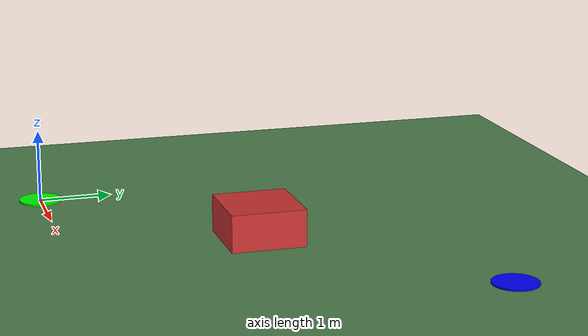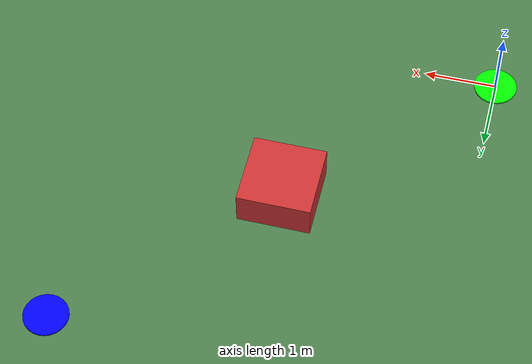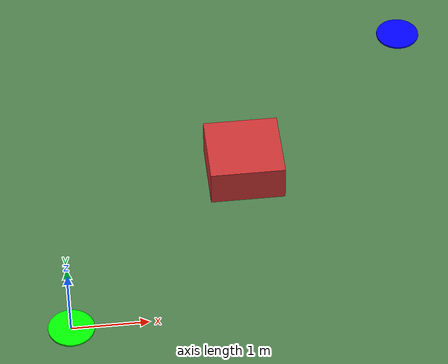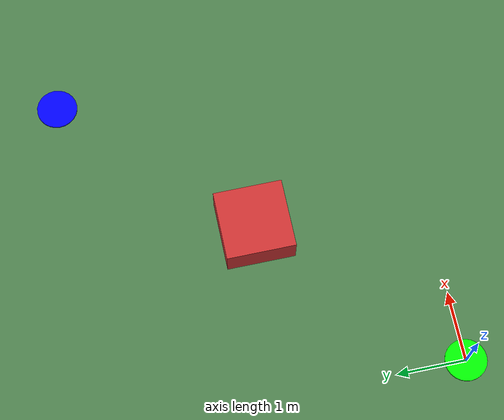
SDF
<?xml version="1.0" ?>
<sdf version="1.8">
  <world name="simple_test_world">

    <!-- Physics -->
    <physics name="1ms" type="ignored">
      <max_step_size>0.001</max_step_size>
      <real_time_factor>1.0</real_time_factor>
    </physics>

    <!-- Plugins -->
    <plugin filename="gz-sim-physics-system" name="gz::sim::systems::Physics"/>
    <plugin filename="gz-sim-user-commands-system" name="gz::sim::systems::UserCommands"/>
    <plugin filename="gz-sim-scene-broadcaster-system" name="gz::sim::systems::SceneBroadcaster"/>
    <plugin filename="gz-sim-sensors-system" name="gz::sim::systems::Sensors">
      <render_engine>ogre2</render_engine>
    </plugin>

    <!-- Lighting -->
    <light type="directional" name="sun">
      <cast_shadows>true</cast_shadows>
      <pose>0 0 10 0 0 0</pose>
      <diffuse>0.8 0.8 0.8 1</diffuse>
      <specular>0.2 0.2 0.2 1</specular>
      <direction>-0.5 0.1 -0.9</direction>
    </light>

    <!-- Ground Plane -->
    <model name="ground_plane">
      <static>true</static>
      <link name="link">
        <collision name="collision">
          <geometry>
            <plane>
              <normal>0 0 1</normal>
              <size>20 20</size>
            </plane>
          </geometry>
        </collision>
        <visual name="visual">
          <geometry>
            <plane>
              <normal>0 0 1</normal>
              <size>20 20</size>
            </plane>
          </geometry>
          <material>
            <ambient>0.3 0.5 0.3 1</ambient>
            <diffuse>0.3 0.5 0.3 1</diffuse>
          </material>
        </visual>
      </link>
    </model>

    <!-- Start marker (Green) -->
    <model name="start_marker">
      <static>true</static>
      <pose>0 0 0.01 0 0 0</pose>
      <link name="link">
        <visual name="visual">
          <geometry>
            <cylinder>
              <radius>0.3</radius>
              <length>0.02</length>
            </cylinder>
          </geometry>
          <material>
            <ambient>0 1 0 1</ambient>
            <diffuse>0 1 0 1</diffuse>
          </material>
        </visual>
      </link>
    </model>

    <!-- Goal marker (Blue) at (5, 5) -->
    <model name="goal_marker">
      <static>true</static>
      <pose>5 5 0.01 0 0 0</pose>
      <link name="link">
        <visual name="visual">
          <geometry>
            <cylinder>
              <radius>0.3</radius>
              <length>0.02</length>
            </cylinder>
          </geometry>
          <material>
            <ambient>0 0 1 1</ambient>
            <diffuse>0 0 1 1</diffuse>
          </material>
        </visual>
      </link>
    </model>

    <!-- One simple obstacle (Red box) -->
    <model name="obstacle1">
      <static>true</static>
      <pose>2.5 2.5 0.25 0 0 0</pose>
      <link name="link">
        <collision name="collision">
          <geometry>
            <box>
              <size>1.0 1.0 0.5</size>
            </box>
          </geometry>
        </collision>
        <visual name="visual">
          <geometry>
            <box>
              <size>1.0 1.0 0.5</size>
            </box>
          </geometry>
          <material>
            <ambient>0.8 0.2 0.2 1</ambient>
            <diffuse>0.8 0.2 0.2 1</diffuse>
          </material>
        </visual>
      </link>
    </model>

  </world>
</sdf>
